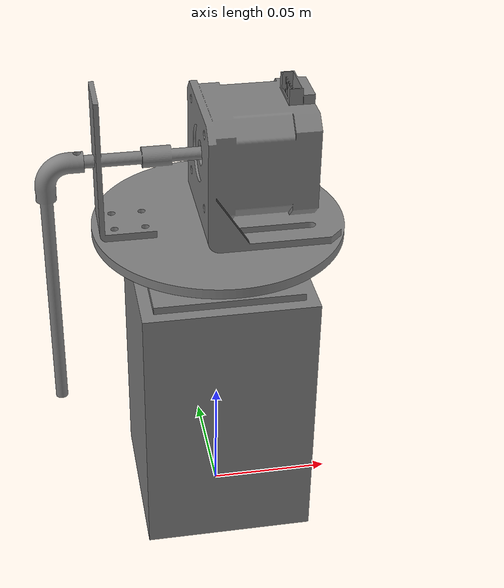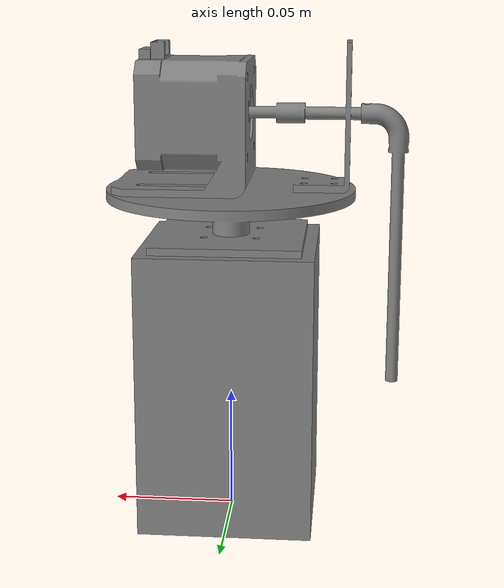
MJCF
<mujoco model="robot">
  <compiler angle="radian" meshdir="/home/shourya/rl2/meshes/" autolimits="true"/>

  <option gravity="0 0 -9.81" integrator="implicitfast"/>

  <default>
    <joint damping="0.01" frictionloss="0.001"/>
    <geom contype="1" conaffinity="1" friction="0.9 0.005 0.0001"/>
    <position kp="10" kv="0.5"/>
  </default>

  <asset>
    <mesh name="disc" file="disc.stl" scale="0.001 0.001 0.001"/>
    <mesh name="base_link" file="base_link.stl" scale="0.001 0.001 0.001"/>
    <mesh name="pendulum" file="pendulum.stl" scale="0.001 0.001 0.001"/>
  </asset>

  <worldbody>
    <!-- base_link is the root; fixed to world (add a free/slide joint here if it should move) -->
    <body name="base_link" pos="0 0 0" euler="0 0 0">
      <inertial pos="6.171755727700128e-05 -1.6072059530088367e-07 0.0631025698792516"
                mass="1.67411359545379"
                fullinertia="0.0027485039526724663 0.0027478860684484723 0.001784527115398101 -2.315655587761894e-08 3.7468013762829782e-06 -1.6748510881927868e-07"/>
      <geom name="base_link_visual" type="mesh" mesh="base_link" pos="0 0 0" euler="0 0 0"
            contype="0" conaffinity="0" group="1"/>
      <geom name="base_link_collision" type="mesh" mesh="base_link" pos="0 0 0" euler="0 0 0"
            group="3"/>

      <!-- disc: driven by base_link_Revolute-2, continuous -> hinge, no limits -->
      <body name="disc" pos="0.0 0.0 0.1178693" euler="0 0 0">
        <inertial pos="0.007668534346231335 -1.8805171185290753e-06 0.03776049660227763"
                  mass="0.9393032348997049"
                  fullinertia="0.0005564364294889344 0.0006883057581110914 0.0006413763359421145 -2.309070493190923e-08 -6.230644000451506e-05 -4.326287667606388e-08"/>
        <joint name="base_link_Revolute-2" type="hinge" axis="0 0 1" pos="0 0 0" limited="false"/>
        <geom name="disc_visual" type="mesh" mesh="disc" pos="7.267471740958731e-19 -2.220446049250313e-18 -0.1198693" euler="0 0 0"
              contype="0" conaffinity="0" group="1"/>
        <geom name="disc_collision" type="mesh" mesh="disc" pos="7.267471740958731e-19 -2.220446049250313e-18 -0.1198693" euler="0 0 0"
              group="3"/>

        <body name="pendulum" pos="-0.059500000000000004 0.0 0.049">
          <inertial pos="-0.005730913802140139 2.5576754011798562e-08 -0.04117956921457129"
                    mass="0.023292673446883957"
                    fullinertia="2.93040412e-05 2.95079264e-05 3.27071903e-07 -3.04712959e-12 -1.20089252e-06 -2.07421405e-11"/>
          <joint name="disc_Revolute-3" type="hinge" axis="1 0 0" pos="0 0 0" limited="false"/>
          <geom name="pendulum_visual" type="mesh" mesh="pendulum" pos="0.0595 -2.220446049250313e-18 -0.1688693" euler="0 0 0"
                contype="0" conaffinity="0" group="1"/>
          <geom name="pendulum_collision" type="mesh" mesh="pendulum" pos="0.0595 -2.220446049250313e-18 -0.1688693" euler="0 0 0"
                group="3"/>
        </body>
      </body>
    </body>
  </worldbody>

  <actuator>
    <motor name="base_link_Revolute-2_act" joint="base_link_Revolute-2" ctrlrange="-2 2" gear="1"/>

    <!-- pendulum joint stays UNACTUATED it must swing freely and only feel
         torque reflected from the reaction wheel. No actuator on this joint. -->
  </actuator>

  <sensor>
    <jointpos name="disc_Revolute-3_pos" joint="disc_Revolute-3"/>
    <jointvel name="disc_Revolute-3_vel" joint="disc_Revolute-3"/>
    <jointpos name="base_link_Revolute-2_pos" joint="base_link_Revolute-2"/>
    <jointvel name="base_link_Revolute-2_vel" joint="base_link_Revolute-2"/>
  </sensor>
</mujoco>
